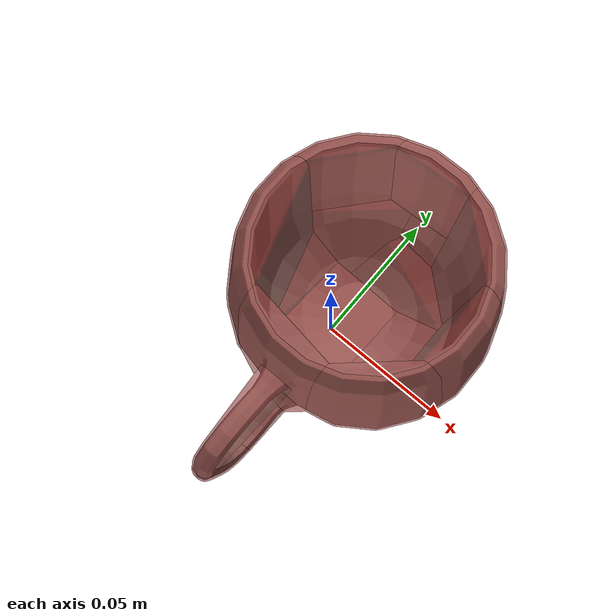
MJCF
<mujoco model="mug_41">
  <asset>
    <mesh file="visual/model_normalized_0.obj" name="model_normalized_0_vis" scale="0.135 0.135 0.135" refquat="0.7071067811865475 0.0 0.0 0.7071067811865476"/>
    <texture type="2d" name="image0" file="visual/image0.png"/>
    <material name="standardSurface2SG" texture="image0" specular="0.5" shininess="1.0"/>
    <mesh file="collision/collision_mesh_collision_0.obj" name="mug_collision_mesh_0" scale="0.135 0.135 0.135" refquat="0.7071067811865475 0.0 0.0 0.7071067811865476"/>
    <mesh file="collision/collision_mesh_collision_1.obj" name="mug_collision_mesh_1" scale="0.135 0.135 0.135" refquat="0.7071067811865475 0.0 0.0 0.7071067811865476"/>
    <mesh file="collision/collision_mesh_collision_2.obj" name="mug_collision_mesh_2" scale="0.135 0.135 0.135" refquat="0.7071067811865475 0.0 0.0 0.7071067811865476"/>
    <mesh file="collision/collision_mesh_collision_3.obj" name="mug_collision_mesh_3" scale="0.135 0.135 0.135" refquat="0.7071067811865475 0.0 0.0 0.7071067811865476"/>
    <mesh file="collision/collision_mesh_collision_4.obj" name="mug_collision_mesh_4" scale="0.135 0.135 0.135" refquat="0.7071067811865475 0.0 0.0 0.7071067811865476"/>
    <mesh file="collision/collision_mesh_collision_5.obj" name="mug_collision_mesh_5" scale="0.135 0.135 0.135" refquat="0.7071067811865475 0.0 0.0 0.7071067811865476"/>
    <mesh file="collision/collision_mesh_collision_6.obj" name="mug_collision_mesh_6" scale="0.135 0.135 0.135" refquat="0.7071067811865475 0.0 0.0 0.7071067811865476"/>
    <mesh file="collision/collision_mesh_collision_7.obj" name="mug_collision_mesh_7" scale="0.135 0.135 0.135" refquat="0.7071067811865475 0.0 0.0 0.7071067811865476"/>
    <mesh file="collision/collision_mesh_collision_8.obj" name="mug_collision_mesh_8" scale="0.135 0.135 0.135" refquat="0.7071067811865475 0.0 0.0 0.7071067811865476"/>
    <mesh file="collision/collision_mesh_collision_9.obj" name="mug_collision_mesh_9" scale="0.135 0.135 0.135" refquat="0.7071067811865475 0.0 0.0 0.7071067811865476"/>
    <mesh file="collision/collision_mesh_collision_10.obj" name="mug_collision_mesh_10" scale="0.135 0.135 0.135" refquat="0.7071067811865475 0.0 0.0 0.7071067811865476"/>
    <mesh file="collision/collision_mesh_collision_11.obj" name="mug_collision_mesh_11" scale="0.135 0.135 0.135" refquat="0.7071067811865475 0.0 0.0 0.7071067811865476"/>
    <mesh file="collision/collision_mesh_collision_12.obj" name="mug_collision_mesh_12" scale="0.135 0.135 0.135" refquat="0.7071067811865475 0.0 0.0 0.7071067811865476"/>
    <mesh file="collision/collision_mesh_collision_13.obj" name="mug_collision_mesh_13" scale="0.135 0.135 0.135" refquat="0.7071067811865475 0.0 0.0 0.7071067811865476"/>
    <mesh file="collision/collision_mesh_collision_14.obj" name="mug_collision_mesh_14" scale="0.135 0.135 0.135" refquat="0.7071067811865475 0.0 0.0 0.7071067811865476"/>
    <mesh file="collision/collision_mesh_collision_15.obj" name="mug_collision_mesh_15" scale="0.135 0.135 0.135" refquat="0.7071067811865475 0.0 0.0 0.7071067811865476"/>
  </asset>
  <default>
    <default class="region">
      <geom group="1" conaffinity="0" contype="0" rgba="0 1 0 0"/>
    </default>
    <default class="collision">
      <geom group="0" rgba="0.5 0 0 0.5" density="1000.0"/>
    </default>
  </default>
  <worldbody>
    <body>
      <body name="object">
        <geom solimp="0.998 0.998 0.001" solref="0.001 1" density="100" friction="0.95 0.3 0.1" type="mesh" mesh="model_normalized_0_vis" conaffinity="0" contype="0" group="1" material="standardSurface2SG"/>
        <geom class="region" name="reg_bbox" type="box" pos="-3.6449999999549344e-08 9.363464999999544e-05 -3.8780775000001184e-05" size="0.0497605626 0.06805786860000002 0.042101022375"/>
        <geom mesh="mug_collision_mesh_0" type="mesh" class="collision"/>
        <geom mesh="mug_collision_mesh_1" type="mesh" class="collision"/>
        <geom mesh="mug_collision_mesh_2" type="mesh" class="collision"/>
        <geom mesh="mug_collision_mesh_3" type="mesh" class="collision"/>
        <geom mesh="mug_collision_mesh_4" type="mesh" class="collision"/>
        <geom mesh="mug_collision_mesh_5" type="mesh" class="collision"/>
        <geom mesh="mug_collision_mesh_6" type="mesh" class="collision"/>
        <geom mesh="mug_collision_mesh_7" type="mesh" class="collision"/>
        <geom mesh="mug_collision_mesh_8" type="mesh" class="collision"/>
        <geom mesh="mug_collision_mesh_9" type="mesh" class="collision"/>
        <geom mesh="mug_collision_mesh_10" type="mesh" class="collision"/>
        <geom mesh="mug_collision_mesh_11" type="mesh" class="collision"/>
        <geom mesh="mug_collision_mesh_12" type="mesh" class="collision"/>
        <geom mesh="mug_collision_mesh_13" type="mesh" class="collision"/>
        <geom mesh="mug_collision_mesh_14" type="mesh" class="collision"/>
        <geom mesh="mug_collision_mesh_15" type="mesh" class="collision"/>
        <geom rgba="0 0 0 0" size="0.038 0.028" pos="0 0.018 0.005" type="cylinder" name="liquid" class="region"/>
        <geom rgba="0 0 0 0 " size="0.0345 0.03" pos="0 0.018 0.009" type="cylinder" name="reg_int" class="region"/>
      </body>
    </body>
  </worldbody>
</mujoco>
